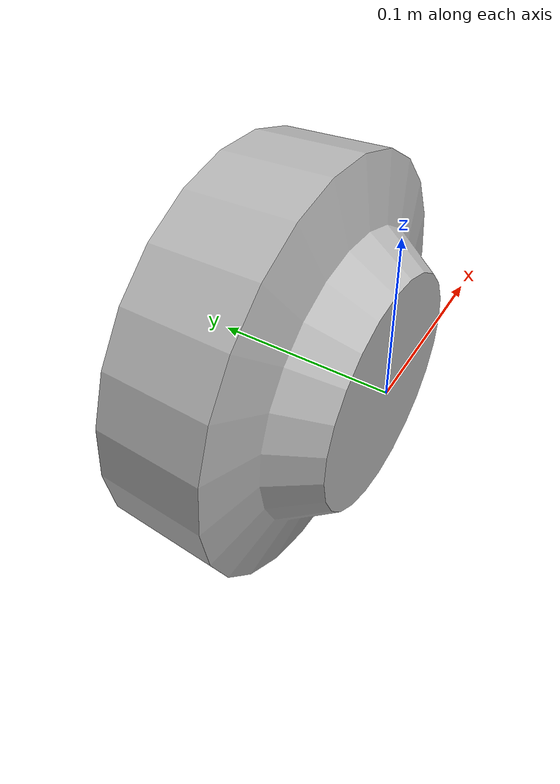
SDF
<?xml version="1.0" ?>
<sdf version="1.4">
  <model name="shelf3_basin">
    <link name="body">
      <pose>0 0 0 0 0 0</pose>
      <inertial>
        <pose>   0.000000   0.048721  -0.000500 0 0 0</pose>
        <mass>0.5</mass>
        <inertia>
          <ixx>0.01</ixx>
          <ixy>0</ixy>
          <ixz>0</ixz>
          <iyy>0.01</iyy>
          <iyz>0</iyz>
          <izz>0.01</izz>
        </inertia>
      </inertial>
      <collision name="collision">
        <geometry>
          <mesh>
            <uri>model://bookshelf/shelf3_items/basin/basin.dae</uri>
          </mesh>
        </geometry>
      </collision>
      <visual name="visual">
        <geometry>
          <mesh>
            <uri>model://bookshelf/shelf3_items/basin/basin.dae</uri>
          </mesh>
        </geometry>
      </visual>
    </link>
  </model>
</sdf>
